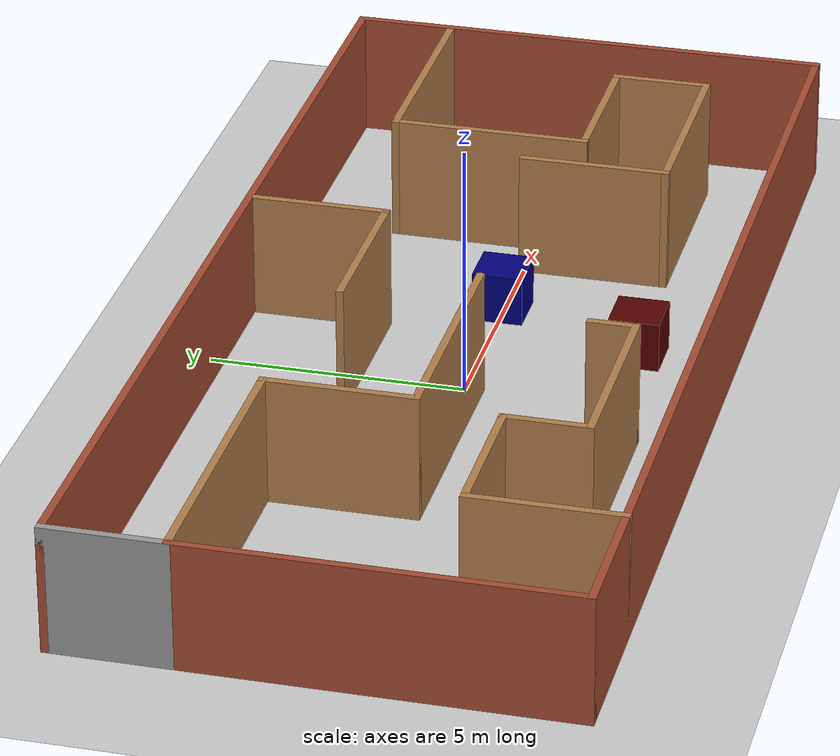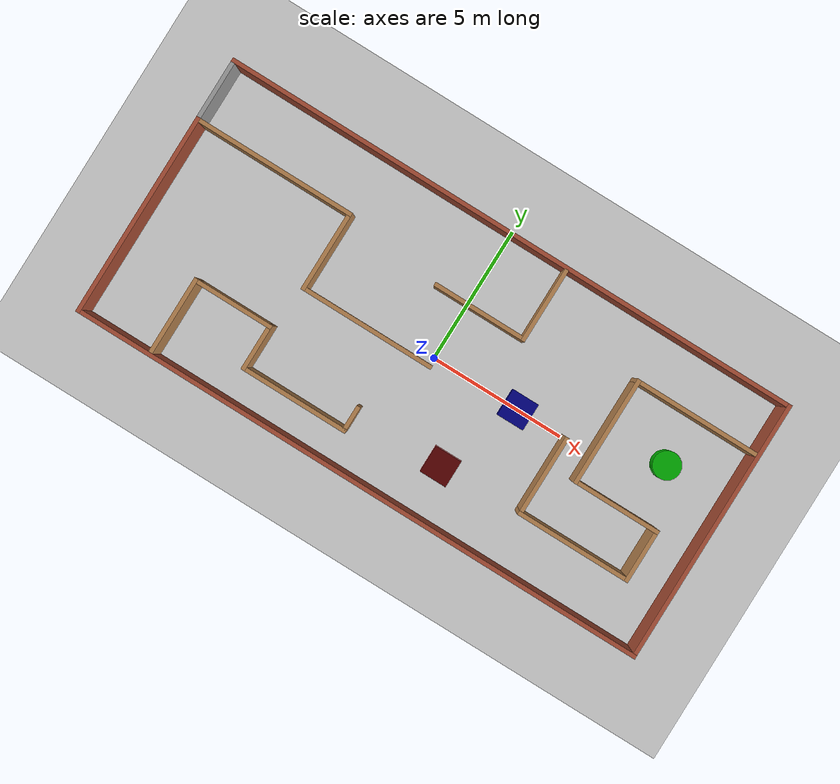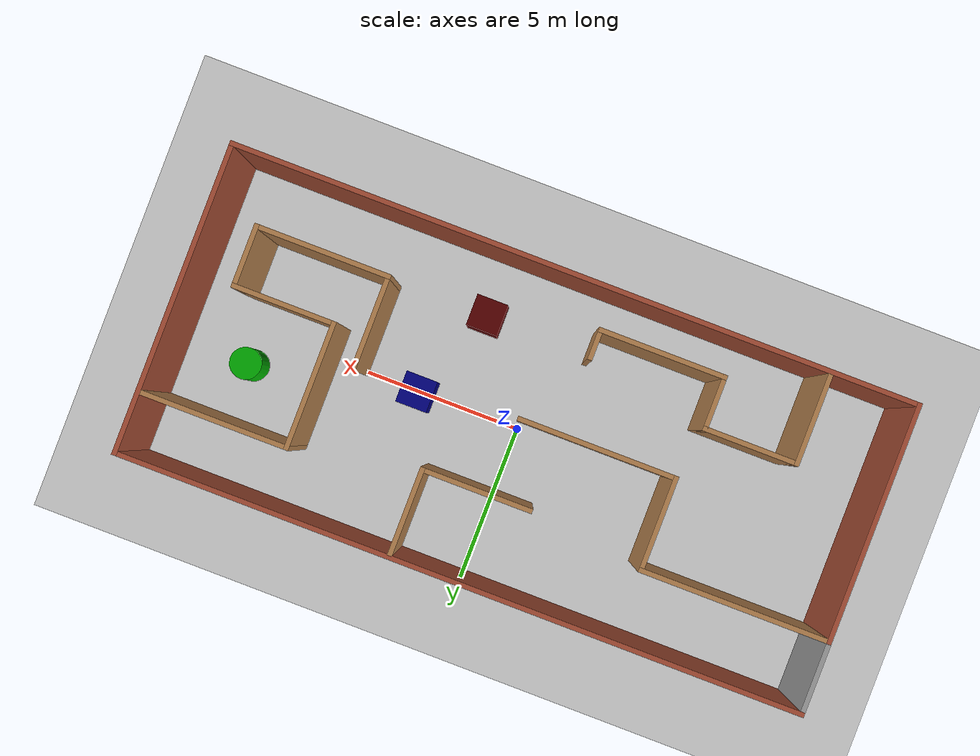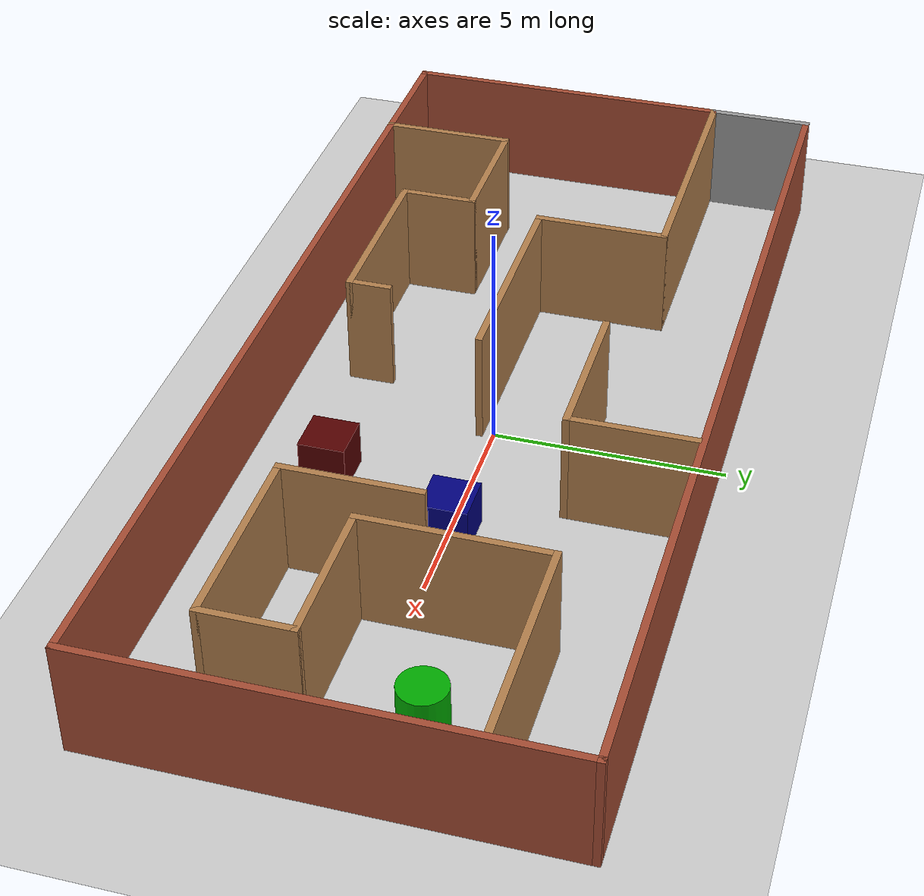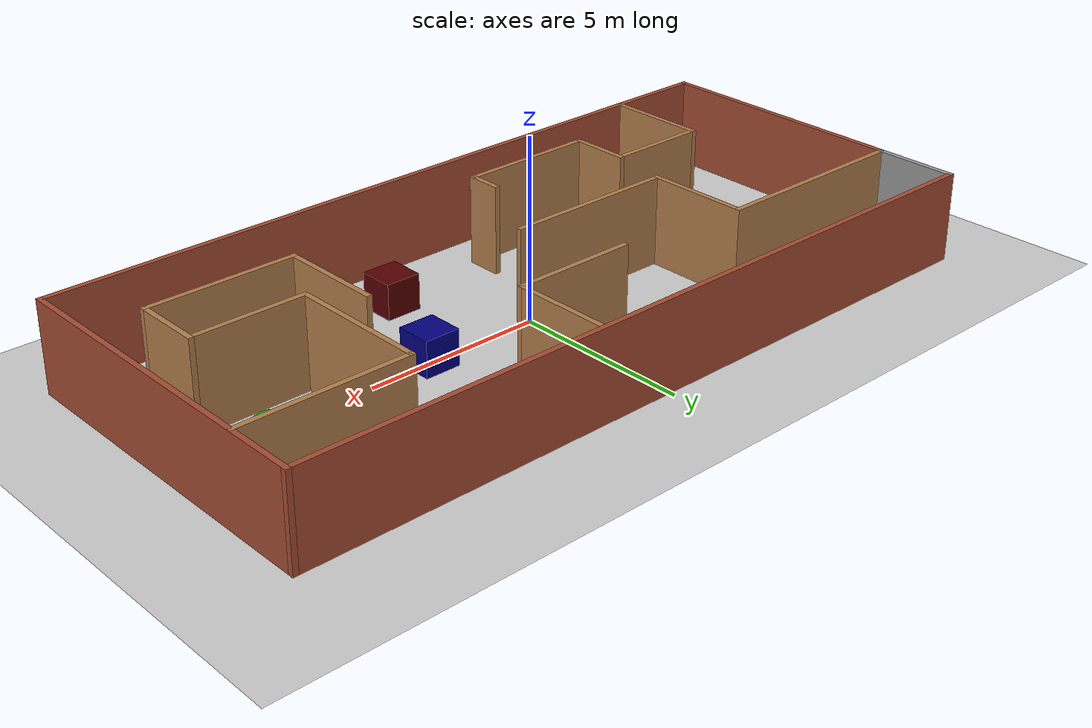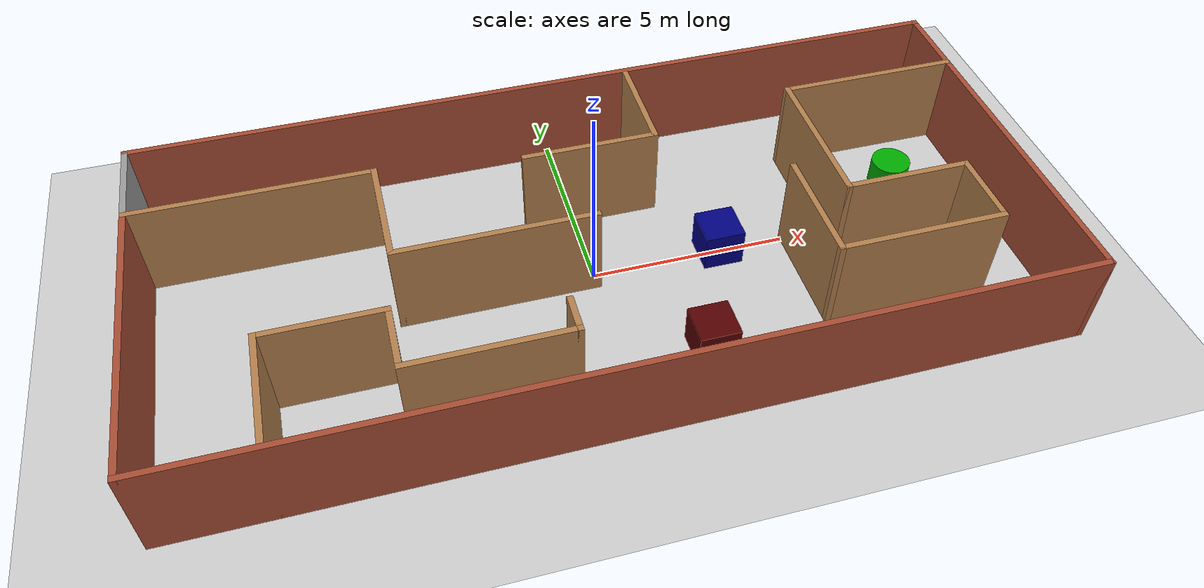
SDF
<sdf version="1.6">
 <world name="default">
  <light name="sun" type="directional">
   <pose>0 0 10 0 -0 0</pose>
   <diffuse>0.8 0.8 0.8 1</diffuse>
   <specular>0.2 0.2 0.2 1</specular>
   <attenuation>
    <range>1000</range>
    <constant>0.9</constant>
    <linear>0.01</linear>
    <quadratic>0.001</quadratic>
   </attenuation>
   <direction>-0.5 0.1 -0.9</direction>
  </light>
  <model name="ground_plane">
   <static>1</static>
   <link name="link">
    <collision name="collision">
     <geometry><plane><normal>0 0 1</normal><size>100 100</size></plane></geometry>
     <surface>
      <contact><collide_bitmask>65535</collide_bitmask></contact>
      <friction><ode><mu>100</mu><mu2>50</mu2></ode></friction>
     </surface>
    </collision>
    <visual name="visual">
     <cast_shadows>0</cast_shadows>
     <geometry><plane><normal>0 0 1</normal><size>100 100</size></plane></geometry>
     <material>
      <script><uri>file://media/materials/scripts/gazebo.material</uri><name>Gazebo/Grey</name></script>
     </material>
    </visual>
   </link>
  </model>
  <gravity>0 0 -9.8</gravity>
  <magnetic_field>6e-06 2.3e-05 -4.2e-05</magnetic_field>
  <atmosphere type="adiabatic"/>
  <physics name="default_physics" default="0" type="ode">
   <max_step_size>0.001</max_step_size>
   <real_time_factor>1</real_time_factor>
   <real_time_update_rate>1000</real_time_update_rate>
  </physics>
  <scene><ambient>0.4 0.4 0.4 1</ambient><background>0.7 0.7 0.7 1</background><shadows>1</shadows></scene>
  <audio><device>default</device></audio>
  <spherical_coordinates>
   <surface_model>EARTH_WGS84</surface_model>
   <latitude_deg>0</latitude_deg>
   <longitude_deg>0</longitude_deg>
   <elevation>0</elevation>
   <heading_deg>0</heading_deg>
  </spherical_coordinates>
  <model name="maze_world">
   <link name="Wall_0">
    <collision name="Wall_0_Collision">
     <geometry><box><size>7.5 0.15 2.5</size></box></geometry>
     <pose>0 0 1.25 0 -0 0</pose>
    </collision>
    <visual name="Wall_0_Visual">
     <pose>0 0 1.25 0 -0 0</pose>
     <geometry><box><size>7.5 0.15 2.5</size></box></geometry>
     <material>
      <script><uri>file://media/materials/scripts/gazebo.material</uri><name>Gazebo/Bricks</name></script>
      <ambient>1 1 1 1</ambient>
     </material>
     <meta><layer>0</layer></meta>
    </visual>
    <pose>-10.675 -1.125 0 0 -0 -1.5708</pose>
   </link>
   <link name="Wall_1">
    <collision name="Wall_1_Collision">
     <geometry><box><size>21.5 0.15 2.5</size></box></geometry>
     <pose>0 0 1.25 0 -0 0</pose>
    </collision>
    <visual name="Wall_1_Visual">
     <pose>0 0 1.25 0 -0 0</pose>
     <geometry><box><size>21.5 0.15 2.5</size></box></geometry>
     <material>
      <script><uri>file://media/materials/scripts/gazebo.material</uri><name>Gazebo/Bricks</name></script>
      <ambient>1 1 1 1</ambient>
     </material>
     <meta><layer>0</layer></meta>
    </visual>
    <pose>0 -4.8 0 0 -0 0</pose>
   </link>
   <link name="Wall_10">
    <collision name="Wall_10_Collision">
     <geometry><box><size>4 0.15 2.5</size></box></geometry>
     <pose>0 0 1.25 0 -0 0</pose>
    </collision>
    <visual name="Wall_10_Visual">
     <pose>0 0 1.25 0 -0 0</pose>
     <geometry><box><size>4 0.15 2.5</size></box></geometry>
     <material>
      <script><uri>file://media/materials/scripts/gazebo.material</uri><name>Gazebo/Wood</name></script>
      <ambient>1 1 1 1</ambient>
     </material>
     <meta><layer>0</layer></meta>
    </visual>
    <pose>6.065 0.965 0 0 -0 -1.5708</pose>
   </link>
   <link name="Wall_11">
    <collision name="Wall_11_Collision">
     <geometry><box><size>3.25 0.15 2.5</size></box></geometry>
     <pose>0 0 1.25 0 -0 0</pose>
    </collision>
    <visual name="Wall_11_Visual">
     <pose>0 0 1.25 0 -0 0</pose>
     <geometry><box><size>3.25 0.15 2.5</size></box></geometry>
     <material>
      <script><uri>file://media/materials/scripts/gazebo.material</uri><name>Gazebo/Wood</name></script>
      <ambient>1 1 1 1</ambient>
     </material>
     <meta><layer>0</layer></meta>
    </visual>
    <pose>7.615 -0.96 0 0 -0 0</pose>
   </link>
   <link name="Wall_12">
    <collision name="Wall_12_Collision">
     <geometry><box><size>2 0.15 2.5</size></box></geometry>
     <pose>0 0 1.25 0 -0 0</pose>
    </collision>
    <visual name="Wall_12_Visual">
     <pose>0 0 1.25 0 -0 0</pose>
     <geometry><box><size>2 0.15 2.5</size></box></geometry>
     <material>
      <script><uri>file://media/materials/scripts/gazebo.material</uri><name>Gazebo/Wood</name></script>
      <ambient>1 1 1 1</ambient>
     </material>
     <meta><layer>0</layer></meta>
    </visual>
    <pose>9.165 -1.885 0 0 -0 -1.5708</pose>
   </link>
   <link name="Wall_13">
    <collision name="Wall_13_Collision">
     <geometry><box><size>4.25 0.15 2.5</size></box></geometry>
     <pose>0 0 1.25 0 -0 0</pose>
    </collision>
    <visual name="Wall_13_Visual">
     <pose>0 0 1.25 0 -0 0</pose>
     <geometry><box><size>4.25 0.15 2.5</size></box></geometry>
     <material>
      <script><uri>file://media/materials/scripts/gazebo.material</uri><name>Gazebo/Wood</name></script>
      <ambient>1 1 1 1</ambient>
     </material>
     <meta><layer>0</layer></meta>
    </visual>
    <pose>7.115 -2.81 0 0 -0 3.14159</pose>
   </link>
   <link name="Wall_14">
    <collision name="Wall_14_Collision">
     <geometry><box><size>3 0.15 2.5</size></box></geometry>
     <pose>0 0 1.25 0 -0 0</pose>
    </collision>
    <visual name="Wall_14_Visual">
     <pose>0 0 1.25 0 -0 0</pose>
     <geometry><box><size>3 0.15 2.5</size></box></geometry>
     <material>
      <script><uri>file://media/materials/scripts/gazebo.material</uri><name>Gazebo/Wood</name></script>
      <ambient>1 1 1 1</ambient>
     </material>
     <meta><layer>0</layer></meta>
    </visual>
    <pose>5.065 -1.385 0 0 -0 1.5708</pose>
   </link>
   <link name="Wall_16">
    <collision name="Wall_16_Collision">
     <geometry><box><size>2.75 0.15 2.5</size></box></geometry>
     <pose>0 0 1.25 0 -0 0</pose>
    </collision>
    <visual name="Wall_16_Visual">
     <pose>0 0 1.25 0 -0 0</pose>
     <geometry><box><size>2.75 0.15 2.5</size></box></geometry>
     <material>
      <script><uri>file://media/materials/scripts/gazebo.material</uri><name>Gazebo/Wood</name></script>
      <ambient>1 1 1 1</ambient>
     </material>
     <meta><layer>0</layer></meta>
    </visual>
    <pose>2.155 3.38 0 0 -0 -1.5708</pose>
   </link>
   <link name="Wall_17">
    <collision name="Wall_17_Collision">
     <geometry><box><size>3.5 0.15 2.5</size></box></geometry>
     <pose>0 0 1.25 0 -0 0</pose>
    </collision>
    <visual name="Wall_17_Visual">
     <pose>0 0 1.25 0 -0 0</pose>
     <geometry><box><size>3.5 0.15 2.5</size></box></geometry>
     <material>
      <script><uri>file://media/materials/scripts/gazebo.material</uri><name>Gazebo/Wood</name></script>
      <ambient>1 1 1 1</ambient>
     </material>
     <meta><layer>0</layer></meta>
    </visual>
    <pose>0.48 2.08 0 0 -0 3.14159</pose>
   </link>
   <link name="Wall_19">
    <collision name="Wall_19_Collision">
     <geometry><box><size>3 0.15 2.5</size></box></geometry>
     <pose>0 0 1.25 0 -0 0</pose>
    </collision>
    <visual name="Wall_19_Visual">
     <pose>0 0 1.25 0 -0 0</pose>
     <geometry><box><size>3 0.15 2.5</size></box></geometry>
     <material>
      <script><uri>file://media/materials/scripts/gazebo.material</uri><name>Gazebo/Wood</name></script>
      <ambient>1 1 1 1</ambient>
     </material>
     <meta><layer>0</layer></meta>
    </visual>
    <pose>-7.955 -3.375 0 0 -0 1.5708</pose>
   </link>
   <link name="Wall_2">
    <collision name="Wall_2_Collision">
     <geometry><box><size>9.75 0.15 2.5</size></box></geometry>
     <pose>0 0 1.25 0 -0 0</pose>
    </collision>
    <visual name="Wall_2_Visual">
     <pose>0 0 1.25 0 -0 0</pose>
     <geometry><box><size>9.75 0.15 2.5</size></box></geometry>
     <material>
      <script><uri>file://media/materials/scripts/gazebo.material</uri><name>Gazebo/Bricks</name></script>
      <ambient>1 1 1 1</ambient>
     </material>
     <meta><layer>0</layer></meta>
    </visual>
    <pose>10.675 -0 0 0 -0 1.5708</pose>
   </link>
   <link name="Wall_20">
    <collision name="Wall_20_Collision">
     <geometry><box><size>3 0.15 2.5</size></box></geometry>
     <pose>0 0 1.25 0 -0 0</pose>
    </collision>
    <visual name="Wall_20_Visual">
     <pose>0 0 1.25 0 -0 0</pose>
     <geometry><box><size>3 0.15 2.5</size></box></geometry>
     <material>
      <script><uri>file://media/materials/scripts/gazebo.material</uri><name>Gazebo/Wood</name></script>
      <ambient>1 1 1 1</ambient>
     </material>
     <meta><layer>0</layer></meta>
    </visual>
    <pose>-6.53 -1.95 0 0 -0 0</pose>
   </link>
   <link name="Wall_21">
    <collision name="Wall_21_Collision">
     <geometry><box><size>1.75 0.15 2.5</size></box></geometry>
     <pose>0 0 1.25 0 -0 0</pose>
    </collision>
    <visual name="Wall_21_Visual">
     <pose>0 0 1.25 0 -0 0</pose>
     <geometry><box><size>1.75 0.15 2.5</size></box></geometry>
     <material>
      <script><uri>file://media/materials/scripts/gazebo.material</uri><name>Gazebo/Wood</name></script>
      <ambient>1 1 1 1</ambient>
     </material>
     <meta><layer>0</layer></meta>
    </visual>
    <pose>-5.105 -2.75 0 0 -0 -1.5708</pose>
   </link>
   <link name="Wall_22">
    <collision name="Wall_22_Collision">
     <geometry><box><size>4 0.15 2.5</size></box></geometry>
     <pose>0 0 1.25 0 -0 0</pose>
    </collision>
    <visual name="Wall_22_Visual">
     <pose>0 0 1.25 0 -0 0</pose>
     <geometry><box><size>4 0.15 2.5</size></box></geometry>
     <material>
      <script><uri>file://media/materials/scripts/gazebo.material</uri><name>Gazebo/Wood</name></script>
      <ambient>1 1 1 1</ambient>
     </material>
     <meta><layer>0</layer></meta>
    </visual>
    <pose>-3.18 -3.55 0 0 -0 0</pose>
   </link>
   <link name="Wall_23">
    <collision name="Wall_23_Collision">
     <geometry><box><size>1 0.15 2.5</size></box></geometry>
     <pose>0 0 1.25 0 -0 0</pose>
    </collision>
    <visual name="Wall_23_Visual">
     <pose>0 0 1.25 0 -0 0</pose>
     <geometry><box><size>1 0.15 2.5</size></box></geometry>
     <material>
      <script><uri>file://media/materials/scripts/gazebo.material</uri><name>Gazebo/Wood</name></script>
      <ambient>1 1 1 1</ambient>
     </material>
     <meta><layer>0</layer></meta>
    </visual>
    <pose>-1.255 -3.125 0 0 -0 1.5708</pose>
   </link>
   <link name="Wall_3">
    <collision name="Wall_3_Collision">
     <geometry><box><size>21.5 0.15 2.5</size></box></geometry>
     <pose>0 0 1.25 0 -0 0</pose>
    </collision>
    <visual name="Wall_3_Visual">
     <pose>0 0 1.25 0 -0 0</pose>
     <geometry><box><size>21.5 0.15 2.5</size></box></geometry>
     <material>
      <script><uri>file://media/materials/scripts/gazebo.material</uri><name>Gazebo/Bricks</name></script>
      <ambient>1 1 1 1</ambient>
     </material>
     <meta><layer>0</layer></meta>
    </visual>
    <pose>0 4.8 0 0 -0 3.14159</pose>
   </link>
   <link name="Wall_4">
    <collision name="Wall_4_Collision">
     <geometry><box><size>2.4 0.15 2.5</size></box></geometry>
     <pose>0 0 1.25 0 -0 0</pose>
    </collision>
    <visual name="Wall_4_Visual">
     <pose>0 0 1.25 0 -0 0</pose>
     <geometry><box><size>2.4 0.15 2.5</size></box></geometry>
     <material>
      <script><uri>file://media/materials/scripts/gazebo.material</uri><name>Gazebo/Grey</name></script>
      <ambient>1 1 1 1</ambient>
     </material>
     <meta><layer>0</layer></meta>
    </visual>
    <pose>-10.675 3.675 0 0 -0 -1.5708</pose>
   </link>
   <link name="Wall_5">
    <collision name="Wall_5_Collision">
     <geometry><box><size>6 0.15 2.5</size></box></geometry>
     <pose>0 0 1.25 0 -0 0</pose>
    </collision>
    <visual name="Wall_5_Visual">
     <pose>0 0 1.25 0 -0 0</pose>
     <geometry><box><size>6 0.15 2.5</size></box></geometry>
     <material>
      <script><uri>file://media/materials/scripts/gazebo.material</uri><name>Gazebo/Wood</name></script>
      <ambient>1 1 1 1</ambient>
     </material>
     <meta><layer>0</layer></meta>
    </visual>
    <pose>-7.75 2.55 0 0 -0 0</pose>
   </link>
   <link name="Wall_6">
    <collision name="Wall_6_Collision">
     <geometry><box><size>3 0.15 2.5</size></box></geometry>
     <pose>0 0 1.25 0 -0 0</pose>
    </collision>
    <visual name="Wall_6_Visual">
     <pose>0 0 1.25 0 -0 0</pose>
     <geometry><box><size>3 0.15 2.5</size></box></geometry>
     <material>
      <script><uri>file://media/materials/scripts/gazebo.material</uri><name>Gazebo/Wood</name></script>
      <ambient>1 1 1 1</ambient>
     </material>
     <meta><layer>0</layer></meta>
    </visual>
    <pose>-4.825 1.125 0 0 -0 -1.5708</pose>
   </link>
   <link name="Wall_7">
    <collision name="Wall_7_Collision">
     <geometry><box><size>5 0.15 2.5</size></box></geometry>
     <pose>0 0 1.25 0 -0 0</pose>
    </collision>
    <visual name="Wall_7_Visual">
     <pose>0 0 1.25 0 -0 0</pose>
     <geometry><box><size>5 0.15 2.5</size></box></geometry>
     <material>
      <script><uri>file://media/materials/scripts/gazebo.material</uri><name>Gazebo/Wood</name></script>
      <ambient>1 1 1 1</ambient>
     </material>
     <meta><layer>0</layer></meta>
    </visual>
    <pose>-2.4 -0.3 0 0 -0 0</pose>
   </link>
   <link name="Wall_9">
    <collision name="Wall_9_Collision">
     <geometry><box><size>4.75 0.15 2.5</size></box></geometry>
     <pose>0 0 1.25 0 -0 0</pose>
    </collision>
    <visual name="Wall_9_Visual">
     <pose>0 0 1.25 0 -0 0</pose>
     <geometry><box><size>4.75 0.15 2.5</size></box></geometry>
     <material>
      <script><uri>file://media/materials/scripts/gazebo.material</uri><name>Gazebo/Wood</name></script>
      <ambient>1 1 1 1</ambient>
     </material>
     <meta><layer>0</layer></meta>
    </visual>
    <pose>8.365 2.89 0 0 -0 3.14159</pose>
   </link>
   <static>1</static>
  </model>
  <model name="tt">
   <link name="link_0">
    <inertial>
     <mass>1</mass>
     <inertia>
      <ixx>0.166667</ixx>
      <ixy>0</ixy>
      <ixz>0</ixz>
      <iyy>0.166667</iyy>
      <iyz>0</iyz>
      <izz>0.166667</izz>
     </inertia>
    </inertial>
    <pose>-2.51854 -2.32098 0 0 -0 0</pose>
    <visual name="visual">
     <geometry><box><size>1 1 1</size></box></geometry>
     <material>
      <lighting>1</lighting>
      <script><uri>file://media/materials/scripts/gazebo.material</uri><name>Gazebo/Grey</name></script>
      <ambient>0.333 0 0 0</ambient>
      <shader type="vertex"><normal_map>__default__</normal_map></shader>
      <diffuse>0.333 0 0 1</diffuse>
      <specular>0.333 0 0 1</specular>
      <emissive>0.333 0 0 1</emissive>
     </material>
    </visual>
    <collision name="collision">
     <geometry><box><size>1 1 1</size></box></geometry>
     <surface>
      <friction>
       <ode><mu>1</mu><mu2>1</mu2><fdir1>0 0 0</fdir1><slip1>0</slip1><slip2>0</slip2></ode>
       <torsional>
        <coefficient>1</coefficient>
        <patch_radius>0</patch_radius>
        <surface_radius>0</surface_radius>
        <use_patch_radius>1</use_patch_radius>
        <ode><slip>0</slip></ode>
       </torsional>
      </friction>
      <bounce><restitution_coefficient>0</restitution_coefficient><threshold>1e+06</threshold></bounce>
      <contact>
       <collide_without_contact>0</collide_without_contact>
       <collide_without_contact_bitmask>1</collide_without_contact_bitmask>
       <collide_bitmask>1</collide_bitmask>
       <ode>
        <soft_cfm>0</soft_cfm>
        <soft_erp>0.2</soft_erp>
        <kp>1e+13</kp>
        <kd>1</kd>
        <max_vel>0.01</max_vel>
        <min_depth>0</min_depth>
       </ode>
       <bullet>
        <split_impulse>1</split_impulse>
        <split_impulse_penetration_threshold>-0.01</split_impulse_penetration_threshold>
        <soft_cfm>0</soft_cfm>
        <soft_erp>0.2</soft_erp>
        <kp>1e+13</kp>
        <kd>1</kd>
       </bullet>
      </contact>
     </surface>
    </collision>
   </link>
   <link name="link_0_clone">
    <inertial>
     <mass>1</mass>
     <inertia>
      <ixx>0.166667</ixx>
      <ixy>0</ixy>
      <ixz>0</ixz>
      <iyy>0.166667</iyy>
      <iyz>0</iyz>
      <izz>0.166667</izz>
     </inertia>
    </inertial>
    <pose>-1.33224 0.63698 0 0 -0 0</pose>
    <visual name="visual">
     <geometry><box><size>1 1 1</size></box></geometry>
     <material>
      <lighting>1</lighting>
      <script><uri>file://media/materials/scripts/gazebo.material</uri><name>Gazebo/Grey</name></script>
      <shader type="vertex"><normal_map>__default__</normal_map></shader>
      <ambient>0 0 0.498 0</ambient>
      <diffuse>0 0 0.498 1</diffuse>
      <specular>0 0 0.498 1</specular>
      <emissive>0 0 0.498 1</emissive>
     </material>
    </visual>
    <collision name="collision">
     <geometry><box><size>1 1 1</size></box></geometry>
     <surface>
      <friction>
       <ode><mu>1</mu><mu2>1</mu2><fdir1>0 0 0</fdir1><slip1>0</slip1><slip2>0</slip2></ode>
       <torsional>
        <coefficient>1</coefficient>
        <patch_radius>0</patch_radius>
        <surface_radius>0</surface_radius>
        <use_patch_radius>1</use_patch_radius>
        <ode><slip>0</slip></ode>
       </torsional>
      </friction>
      <bounce><restitution_coefficient>0</restitution_coefficient><threshold>1e+06</threshold></bounce>
      <contact>
       <collide_without_contact>0</collide_without_contact>
       <collide_without_contact_bitmask>1</collide_without_contact_bitmask>
       <collide_bitmask>1</collide_bitmask>
       <ode>
        <soft_cfm>0</soft_cfm>
        <soft_erp>0.2</soft_erp>
        <kp>1e+13</kp>
        <kd>1</kd>
        <max_vel>0.01</max_vel>
        <min_depth>0</min_depth>
       </ode>
       <bullet>
        <split_impulse>1</split_impulse>
        <split_impulse_penetration_threshold>-0.01</split_impulse_penetration_threshold>
        <soft_cfm>0</soft_cfm>
        <soft_erp>0.2</soft_erp>
        <kp>1e+13</kp>
        <kd>1</kd>
       </bullet>
      </contact>
     </surface>
    </collision>
   </link>
   <link name="link_1">
    <inertial>
     <mass>1</mass>
     <inertia><ixx>0.145833</ixx><ixy>0</ixy><ixz>0</ixz><iyy>0.145833</iyy><iyz>0</iyz><izz>0.125</izz></inertia>
    </inertial>
    <pose>3.85079 1.684 0 0 -0 0</pose>
    <visual name="visual">
     <geometry><cylinder><radius>0.5</radius><length>1</length></cylinder></geometry>
     <material>
      <lighting>1</lighting>
      <script><uri>file://media/materials/scripts/gazebo.material</uri><name>Gazebo/Grey</name></script>
      <ambient>0 0.667 0 0</ambient>
      <shader type="vertex"><normal_map>__default__</normal_map></shader>
      <diffuse>0 0.667 0 1</diffuse>
      <specular>0 0.667 0 1</specular>
      <emissive>0 0.667 0 1</emissive>
     </material>
    </visual>
    <collision name="collision">
     <geometry><cylinder><radius>0.5</radius><length>1</length></cylinder></geometry>
     <surface>
      <friction>
       <ode><mu>1</mu><mu2>1</mu2><fdir1>0 0 0</fdir1><slip1>0</slip1><slip2>0</slip2></ode>
       <torsional>
        <coefficient>1</coefficient>
        <patch_radius>0</patch_radius>
        <surface_radius>0</surface_radius>
        <use_patch_radius>1</use_patch_radius>
        <ode><slip>0</slip></ode>
       </torsional>
      </friction>
      <bounce><restitution_coefficient>0</restitution_coefficient><threshold>1e+06</threshold></bounce>
      <contact>
       <collide_without_contact>0</collide_without_contact>
       <collide_without_contact_bitmask>1</collide_without_contact_bitmask>
       <collide_bitmask>1</collide_bitmask>
       <ode>
        <soft_cfm>0</soft_cfm>
        <soft_erp>0.2</soft_erp>
        <kp>1e+13</kp>
        <kd>1</kd>
        <max_vel>0.01</max_vel>
        <min_depth>0</min_depth>
       </ode>
       <bullet>
        <split_impulse>1</split_impulse>
        <split_impulse_penetration_threshold>-0.01</split_impulse_penetration_threshold>
        <soft_cfm>0</soft_cfm>
        <soft_erp>0.2</soft_erp>
        <kp>1e+13</kp>
        <kd>1</kd>
       </bullet>
      </contact>
     </surface>
    </collision>
   </link>
   <static>0</static>
   <pose>4.60648 -0.609723 0.50002 0 -1e-05 0</pose>
  </model>
 </world>
</sdf>
